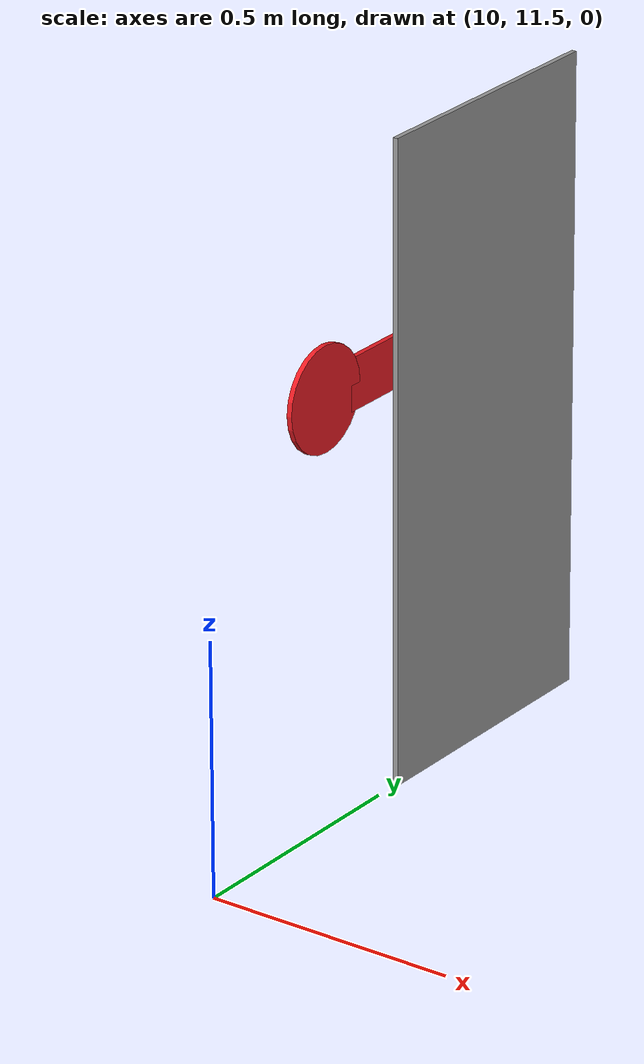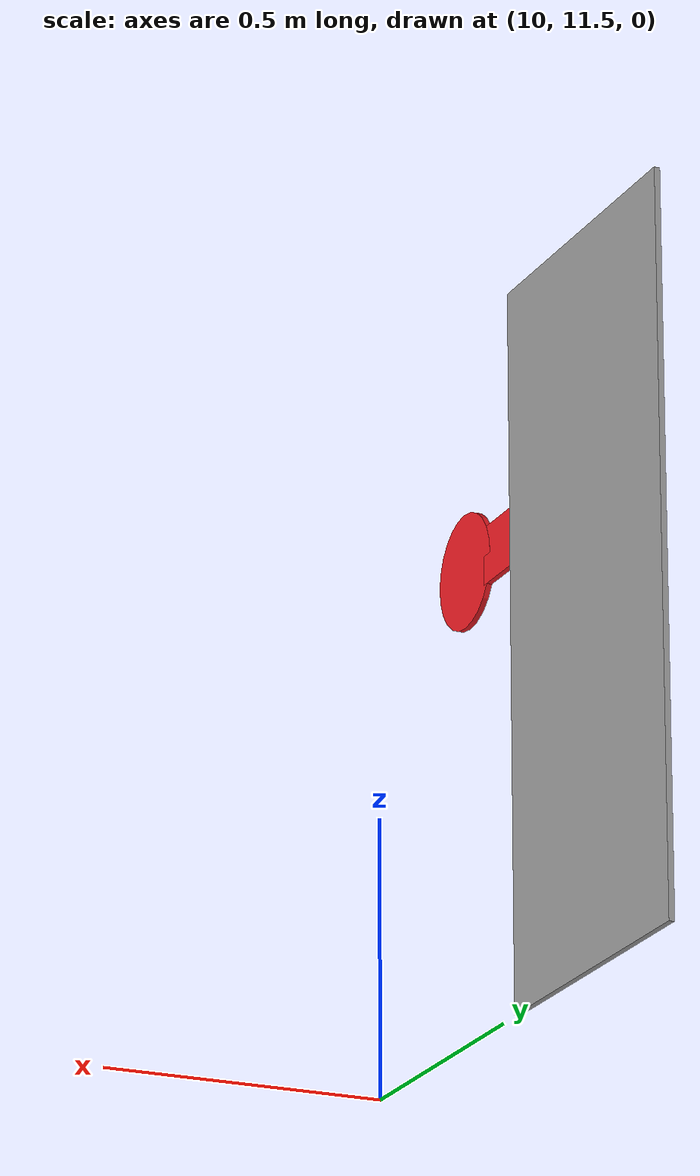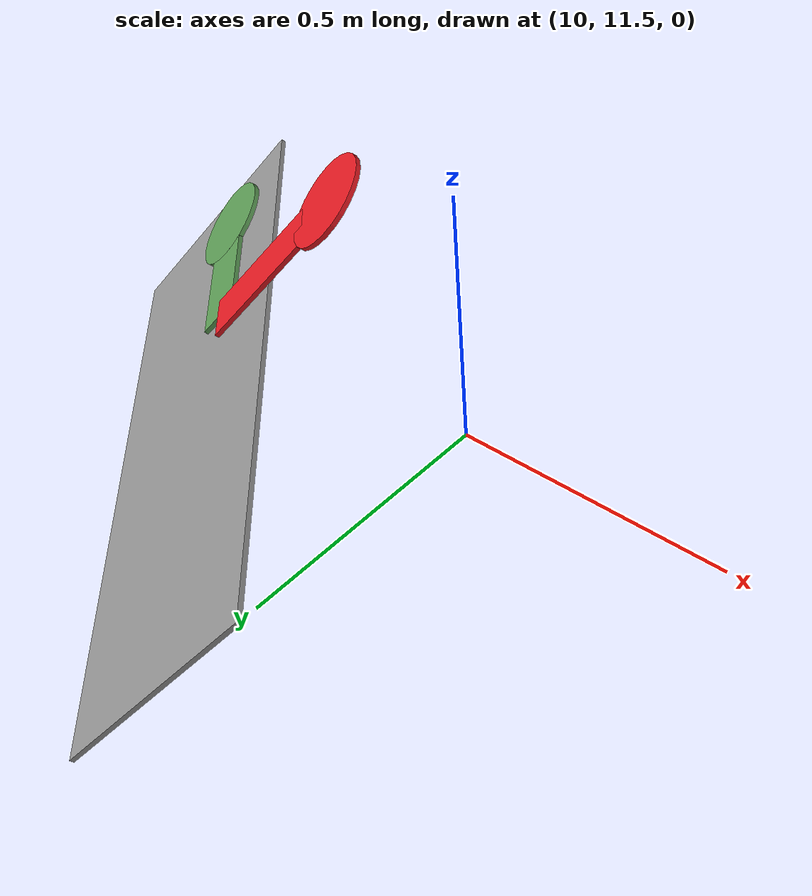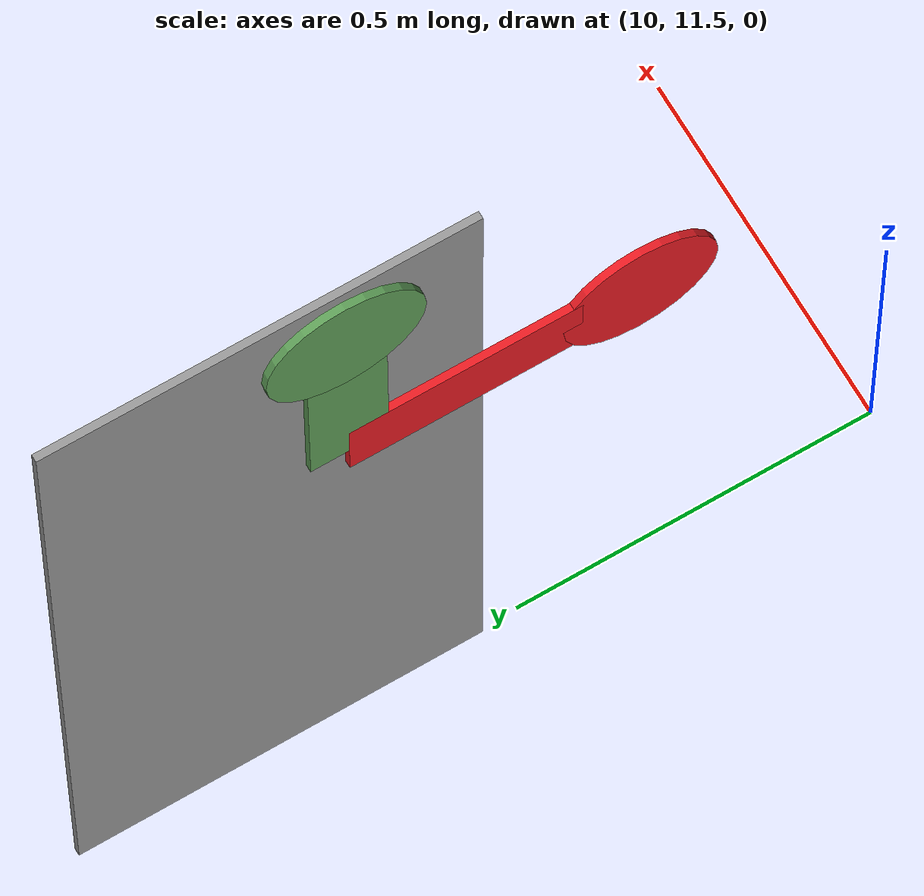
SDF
<?xml version="1.0"?>
<sdf version="1.6">
    <model name="start_signal">
        <static>false</static>
        <pose>10 12.33 0.630 0 0 -1.57</pose>
        <link name="green_signal_link">
            <pose>0.1 -0.01 0.509 1.57 0 0</pose>
            <collision name="collision">
                <geometry>
                    <cylinder>
                        <radius>0.102</radius>
                        <length>0.01</length>
                    </cylinder>
                </geometry>
            </collision>
            <visual name="visual">
                <geometry>
                    <cylinder>
                        <radius>0.102</radius>
                        <length>0.01</length>
                    </cylinder>
                </geometry>
                <material>
                    <ambient>0.376 0.631 0.349 1</ambient>
                    <diffuse>0.376 0.631 0.349 1</diffuse>
                    <specular>0.1 0.1 0.1 1</specular>
                    <emissive>0 0 0 1</emissive>
                </material>
            </visual>
        </link>
        <link name="red_signal_link">
            <pose>0.481 -0.01 0.203 1.57 0 0</pose>
            <collision name="collision">
                <geometry>
                    <cylinder>
                        <radius>0.102</radius>
                        <length>0.01</length>
                    </cylinder>
                </geometry>
            </collision>
            <visual name="visual">
                <geometry>
                    <cylinder>
                        <radius>0.102</radius>
                        <length>0.01</length>
                    </cylinder>
                </geometry>
                <material>
                    <ambient>0.929 0.110 0.141 1.0</ambient>
                    <diffuse>0.929 0.110 0.141 1.0</diffuse>
                    <specular>0.1 0.1 0.1 1.0</specular>
                    <emissive>0 0 0 1.0</emissive>
                </material>
            </visual>
        </link>
        <link name="base_link">
            <collision name="collision">
                <geometry>
                    <box>
                        <size>0.559 0.01 1.260</size>
                    </box>
                </geometry>
            </collision>
            <visual name="visual">
                <geometry>
                    <box>
                        <size>0.559 0.01 1.260</size>
                    </box>
                </geometry>
                <material>
                    <script>
                        <uri>file://media/materials/scripts/gazebo.material</uri>
                        <name>Gazebo/Gray</name>
                    </script>
                </material>
            </visual>
        </link>
        <link name="green_arm_link">
            <pose>0.1 -0.01 0.356 0 1.57 0</pose>
            <collision name="collision">
                <geometry>
                    <box>
                        <size>0.305 0.01 0.102</size>
                    </box>
                </geometry>
            </collision>
            <visual name="visual">
                <geometry>
                    <box>
                        <size>0.305 0.01 0.102</size>
                    </box>
                </geometry>
                <material>
                    <ambient>0.376 0.631 0.349 1</ambient>
                    <diffuse>0.376 0.631 0.349 1</diffuse>
                    <specular>0.1 0.1 0.1 1</specular>
                    <emissive>0 0 0 1</emissive>
                </material>
            </visual>
        </link>
        <link name="red_arm_link">
            <pose>0.252 -0.01 0.203 0 0 0</pose>
            <collision name="collision">
                <geometry>
                    <box>
                        <size>0.305 0.01 0.102</size>
                    </box>
                </geometry>
            </collision>
            <visual name="visual">
                <geometry>
                    <box>
                        <size>0.305 0.01 0.102</size>
                    </box>
                </geometry>
                <material>
                    <ambient>0.929 0.110 0.141 1.0</ambient>
                    <diffuse>0.929 0.110 0.141 1.0</diffuse>
                    <specular>0.1 0.1 0.1 1.0</specular>
                    <emissive>0 0 0 1.0</emissive>
                </material>
            </visual>
        </link>
        <joint name="red_signal_arm_joint" type="fixed">
            <parent>red_arm_link</parent>
            <child>red_signal_link</child>
            <pose>0 0 0 0 0 0</pose>
        </joint>
        <joint name="green_signal_arm_joint" type="fixed">
            <parent>green_arm_link</parent>
            <child>green_signal_link</child>
            <pose>0 0 0 0 0 0</pose>
        </joint>
        <joint name="arms_joint" type="fixed">
            <parent>green_arm_link</parent>
            <child>red_arm_link</child>
            <pose>-0.152 0 0 0 0 0</pose>
        </joint>
        <joint name="revolute_joint" type="revolute">
            <parent>base_link</parent>
            <child>green_arm_link</child>
            <pose>0.152 0 0 0 0 1.57</pose>
            <axis>
                <xyz>1 0 0</xyz>
                <limit>
                    <lower>-1.57</lower>
                    <upper>1.57</upper>
                    <effort>10000</effort>   <!-- Added effort limit -->
                    <velocity>5.0</velocity> <!-- Optional, recommended -->
                </limit>
            </axis>
        </joint>
        <plugin
            filename="libstart-signal-plugin.so"
            name="gz::sim::systems::StartSignalPlugin">
            <start_time>5</start_time>
        </plugin>
    </model>
</sdf>
